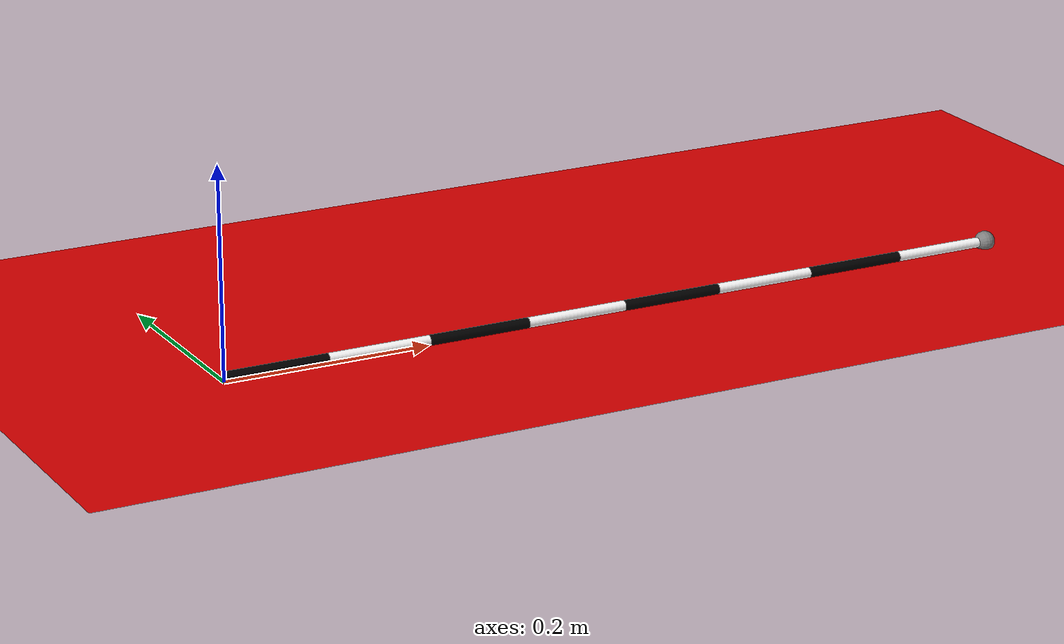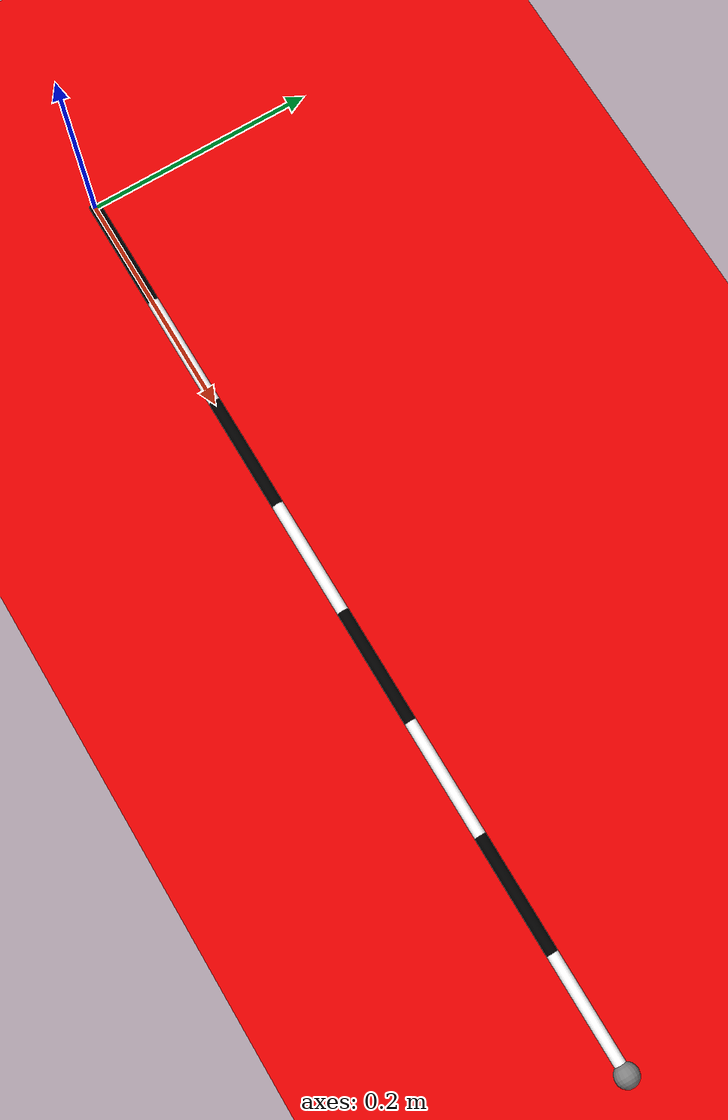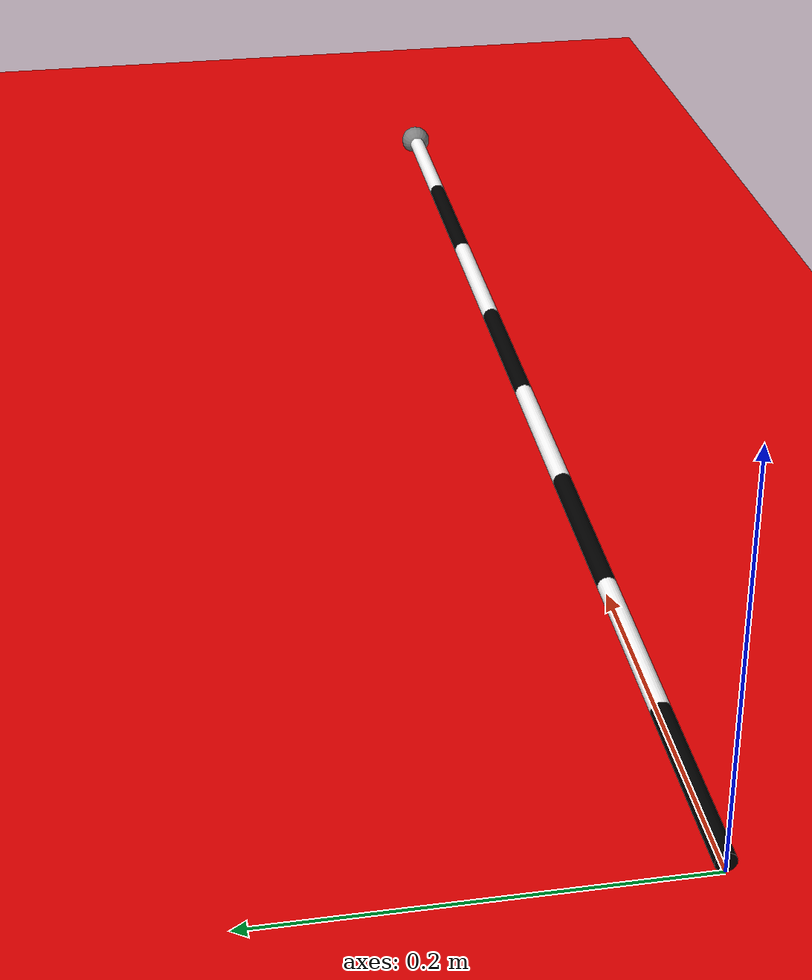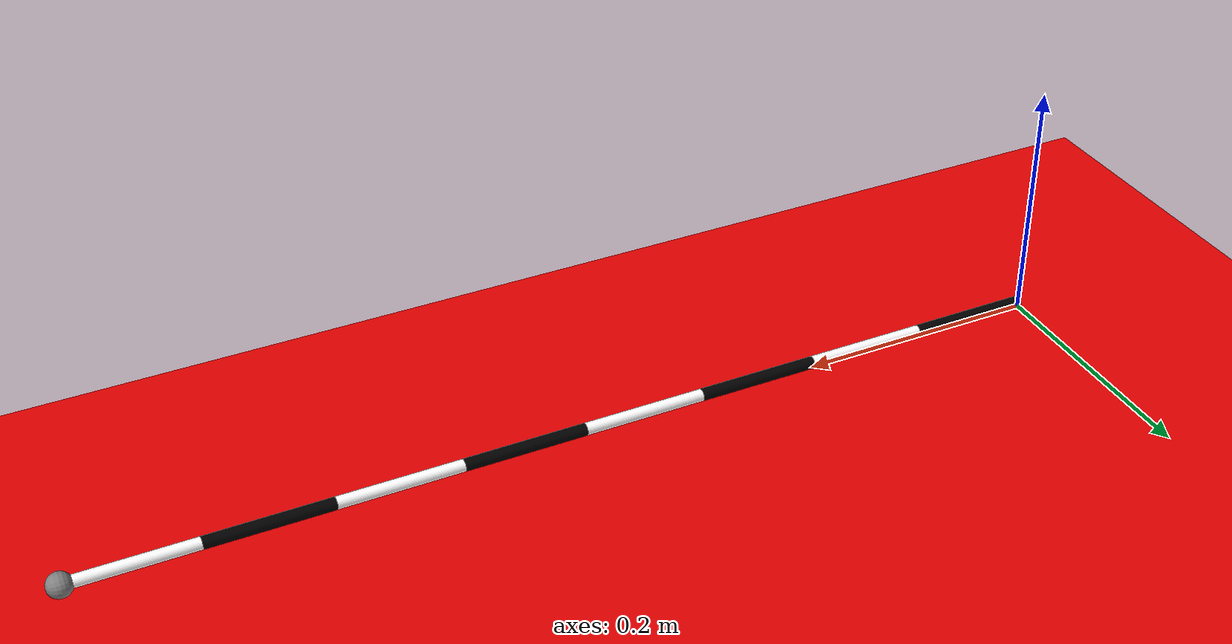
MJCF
<mujoco>
	<compiler autolimits="true" eulerseq="XYZ"/>

	<worldbody>

        <light diffuse=".5 .5 .5" pos="0 0 3" dir="0 0 -2"/>
		<geom type="plane" size="2 2 0.1" rgba=".9 0 0 1"/>
		<body pos="0.05 0 0.005" euler = "0 90 0">
			<inertial diaginertia="1 1 1" mass=".1" pos="0 0 0"></inertial>
			<joint name="1" type="hinge" pos="0 0 -0.05" axis="-1 0 0" limited= "true" range= "-90 90"/>
			<geom type="cylinder" size="0.005 0.05" rgba="0 0 0 1" />
			<body pos="0 0 0.1" euler = "0 0 0">
				<inertial diaginertia="1 1 1" mass=".1"  pos="0 0 0"></inertial>
				<joint name="2" type="hinge" pos="0 0 -.05" axis="0 -1 0" limited= "true" range= "-90 90"/>
				<geom type="cylinder" size=".005 .05 " rgba="1 1 1 1" />
				<body pos="0 0 0.1" euler = "0 0 0">
					<joint name="3" type="hinge" pos="0 0 -.05" axis="-1 0 0" limited= "true" range= "-90 90"/>
					<geom type="cylinder" size=".005 .05 " rgba="0 0 0 1" />
					<body pos="0 0 0.1" euler = "0 0 0">
						<joint name="4" type="hinge" pos="0 0 -.05" axis="0 -1 0" limited= "true" range= "-90 90"/>
						<geom type="cylinder" size=".005 .05 " rgba="1 1 1 1" />
						<body pos="0 0 0.1" euler = "0 0 0">
							<joint name="5" type="hinge" pos="0 0 -.05" axis="-1 0 0" limited= "true" range= "-90 90"/>
							<geom type="cylinder" size=".005 .05 " rgba="0 0 0 1" />
							<body pos="0 0 0.1" euler = "0 0 0">
								<joint name="6" type="hinge" pos="0 0 -.05" axis="0 -1 0" limited= "true" range= "-90 90"/>
								<geom type="cylinder" size=".005 .05 " rgba="1 1 1 1" />
								<body pos="0 0 0.1" euler = "0 0 0">
									<joint name="7" type="hinge" pos="0 0 -.05" axis="-1 0 0" limited= "true" range= "-90 90"/>
									<geom type="cylinder" size=".005 .05 " rgba="0 0 0 1" />
									<body pos="0 0 0.1" euler = "0 0 0">
										<joint name="8" type="hinge" pos="0 0 -.05" axis="0 -1 0" limited= "true" range= "-90 90"/>
										<geom type="cylinder" size=".005 .05 " rgba="1 1 1 1" />
										<site name="tip" size="0.01" pos="0 0 0.05"/>
									</body>
								</body>
							</body>
						</body>
					</body>
				</body>
			</body>
		</body>
	</worldbody>
	<actuator>
			<motor joint="1" name="t1" gear="1" ctrllimited="true" ctrlrange="-10 10"/>
			<motor joint="2" name="t2" gear="1" ctrllimited="true" ctrlrange="-10 10"/>
			<motor joint="3" name="t3" gear="1" ctrllimited="true" ctrlrange="-10 10"/>
			<motor joint="4" name="t4" gear="1" ctrllimited="true" ctrlrange="-10 10"/>
			<motor joint="5" name="t5" gear="1" ctrllimited="true" ctrlrange="-10 10"/>
			<motor joint="6" name="t6" gear="1" ctrllimited="true" ctrlrange="-10 10"/>
			<motor joint="7" name="t7" gear="1" ctrllimited="true" ctrlrange="-10 10"/>
			<motor joint="8" name="t8" gear="1" ctrllimited="true" ctrlrange="-10 10"/>
	</actuator>
</mujoco>

<!-- sensor/ jointlimitfrc (*) -->
